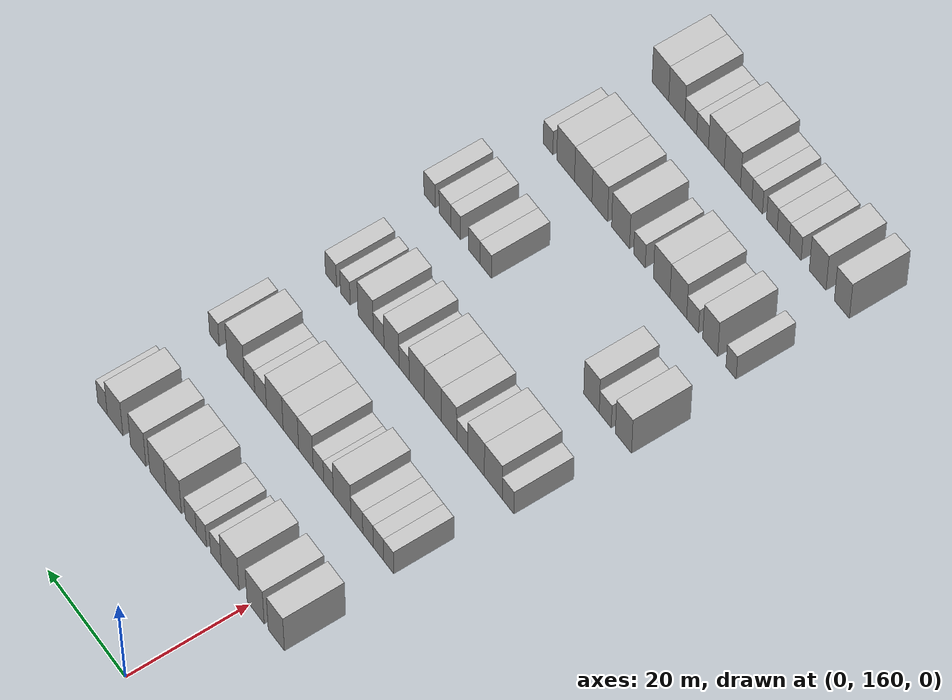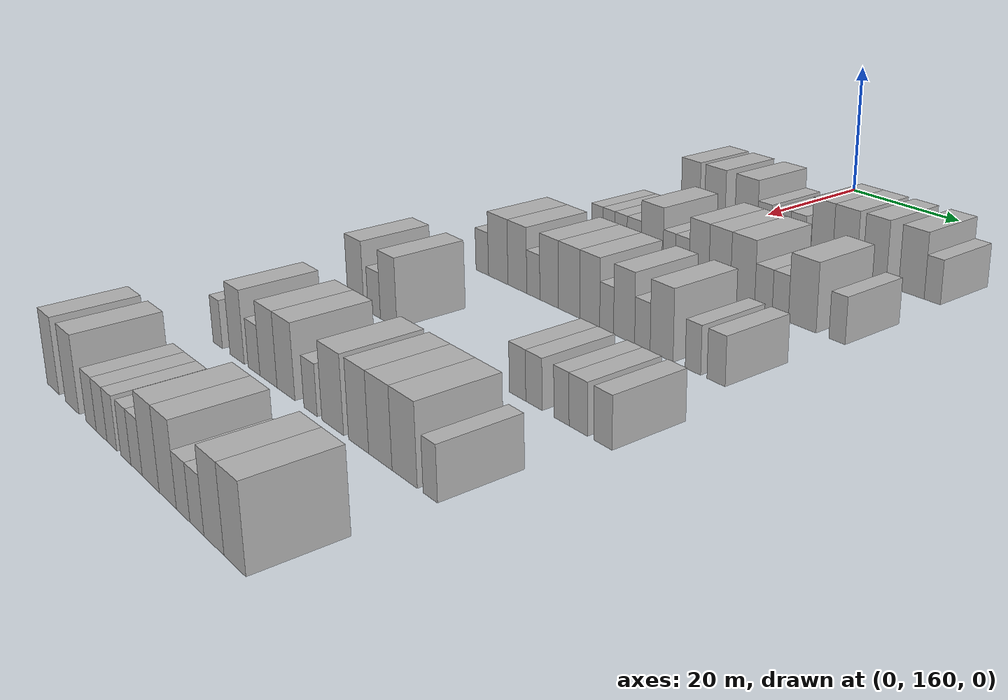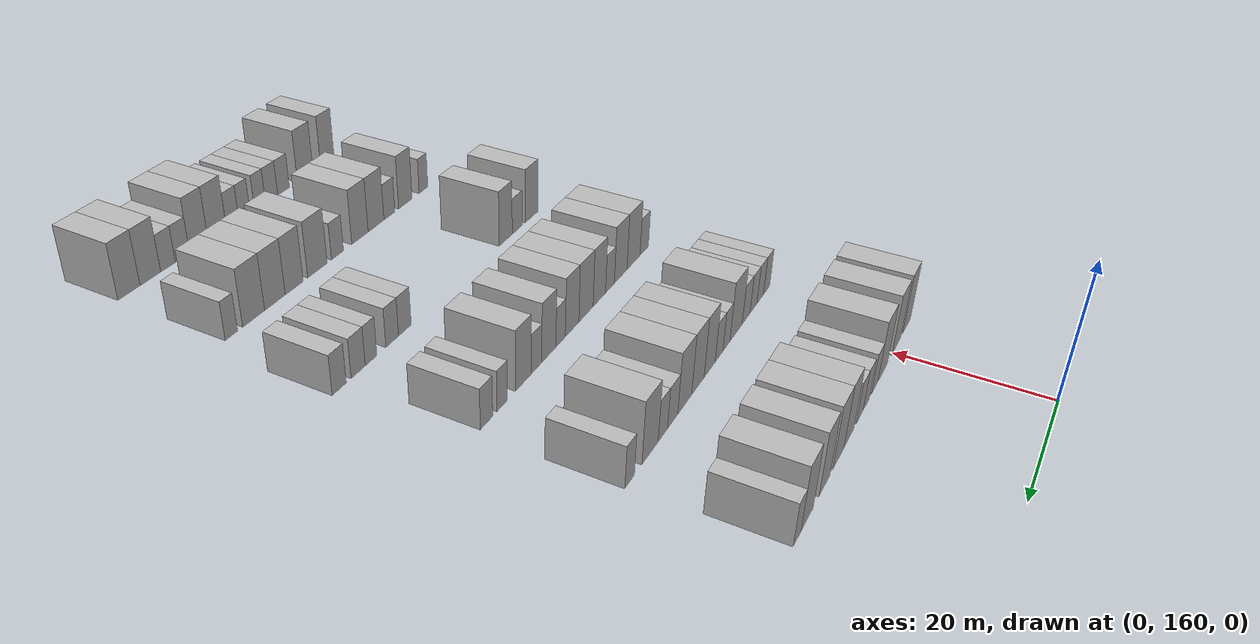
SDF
<sdf version="1.6">
 <world name="default">
  <model name="building_134">
   <static>1</static>
   <pose>25.0000 153.2590 0 0.000000 0.000000 0.000000</pose>
   <link name="link">
    <pose>0 0 4.50 0 0 0</pose>
    <collision name="collision"><geometry><box><size>10.0000 4.0474 9.0000</size></box></geometry></collision>
    <visual name="visual">
     <cast_shadows>0</cast_shadows>
     <geometry><box><size>10.0000 4.0474 9.0000</size></box></geometry>
     <material>
      <script>
       <uri>model://HANNAS_wall/materials/scripts</uri>
       <uri>model://HANNAS_wall/materials/textures</uri>
       <name>vrc/HANNAS_wall</name>
      </script>
     </material>
    </visual>
   </link>
  </model>
  <model name="building_135">
   <static>1</static>
   <pose>25.0000 158.4316 0 0.000000 0.000000 0.000000</pose>
   <link name="link">
    <pose>0 0 4.50 0 0 0</pose>
    <collision name="collision"><geometry><box><size>10.0000 4.2978 9.0000</size></box></geometry></collision>
    <visual name="visual">
     <cast_shadows>0</cast_shadows>
     <geometry><box><size>10.0000 4.2978 9.0000</size></box></geometry>
     <material>
      <script>
       <uri>model://HANNAS_wall/materials/scripts</uri>
       <uri>model://HANNAS_wall/materials/textures</uri>
       <name>vrc/HANNAS_wall</name>
      </script>
     </material>
    </visual>
   </link>
  </model>
  <model name="building_136">
   <static>1</static>
   <pose>25.0000 164.8286 0 0.000000 0.000000 0.000000</pose>
   <link name="link">
    <pose>0 0 4.50 0 0 0</pose>
    <collision name="collision"><geometry><box><size>10.0000 4.4962 9.0000</size></box></geometry></collision>
    <visual name="visual">
     <cast_shadows>0</cast_shadows>
     <geometry><box><size>10.0000 4.4962 9.0000</size></box></geometry>
     <material>
      <script>
       <uri>model://HANNAS_wall/materials/scripts</uri>
       <uri>model://HANNAS_wall/materials/textures</uri>
       <name>vrc/HANNAS_wall</name>
      </script>
     </material>
    </visual>
   </link>
  </model>
  <model name="building_137">
   <static>1</static>
   <pose>25.0000 168.4342 0 0.000000 0.000000 0.000000</pose>
   <link name="link">
    <pose>0 0 3.00 0 0 0</pose>
    <collision name="collision"><geometry><box><size>10.0000 2.7151 6.0000</size></box></geometry></collision>
    <visual name="visual">
     <cast_shadows>0</cast_shadows>
     <geometry><box><size>10.0000 2.7151 6.0000</size></box></geometry>
     <material>
      <script>
       <uri>model://HANNAS_wall/materials/scripts</uri>
       <uri>model://HANNAS_wall/materials/textures</uri>
       <name>vrc/HANNAS_wall</name>
      </script>
     </material>
    </visual>
   </link>
  </model>
  <model name="building_138">
   <static>1</static>
   <pose>25.0000 172.0923 0 0.000000 0.000000 0.000000</pose>
   <link name="link">
    <pose>0 0 3.00 0 0 0</pose>
    <collision name="collision"><geometry><box><size>10.0000 2.6012 6.0000</size></box></geometry></collision>
    <visual name="visual">
     <cast_shadows>0</cast_shadows>
     <geometry><box><size>10.0000 2.6012 6.0000</size></box></geometry>
     <material>
      <script>
       <uri>model://HANNAS_wall/materials/scripts</uri>
       <uri>model://HANNAS_wall/materials/textures</uri>
       <name>vrc/HANNAS_wall</name>
      </script>
     </material>
    </visual>
   </link>
  </model>
  <model name="building_139">
   <static>1</static>
   <pose>25.0000 174.8027 0 0.000000 0.000000 0.000000</pose>
   <link name="link">
    <pose>0 0 3.00 0 0 0</pose>
    <collision name="collision"><geometry><box><size>10.0000 2.8196 6.0000</size></box></geometry></collision>
    <visual name="visual">
     <cast_shadows>0</cast_shadows>
     <geometry><box><size>10.0000 2.8196 6.0000</size></box></geometry>
     <material>
      <script>
       <uri>model://HANNAS_wall/materials/scripts</uri>
       <uri>model://HANNAS_wall/materials/textures</uri>
       <name>vrc/HANNAS_wall</name>
      </script>
     </material>
    </visual>
   </link>
  </model>
  <model name="building_140">
   <static>1</static>
   <pose>25.0000 179.1623 0 0.000000 0.000000 0.000000</pose>
   <link name="link">
    <pose>0 0 4.50 0 0 0</pose>
    <collision name="collision"><geometry><box><size>10.0000 3.8996 9.0000</size></box></geometry></collision>
    <visual name="visual">
     <cast_shadows>0</cast_shadows>
     <geometry><box><size>10.0000 3.8996 9.0000</size></box></geometry>
     <material>
      <script>
       <uri>model://HANNAS_wall/materials/scripts</uri>
       <uri>model://HANNAS_wall/materials/textures</uri>
       <name>vrc/HANNAS_wall</name>
      </script>
     </material>
    </visual>
   </link>
  </model>
  <model name="building_141">
   <static>1</static>
   <pose>25.0000 183.2259 0 0.000000 0.000000 0.000000</pose>
   <link name="link">
    <pose>0 0 4.50 0 0 0</pose>
    <collision name="collision"><geometry><box><size>10.0000 4.2275 9.0000</size></box></geometry></collision>
    <visual name="visual">
     <cast_shadows>0</cast_shadows>
     <geometry><box><size>10.0000 4.2275 9.0000</size></box></geometry>
     <material>
      <script>
       <uri>model://HANNAS_wall/materials/scripts</uri>
       <uri>model://HANNAS_wall/materials/textures</uri>
       <name>vrc/HANNAS_wall</name>
      </script>
     </material>
    </visual>
   </link>
  </model>
  <model name="building_142">
   <static>1</static>
   <pose>25.0000 188.3175 0 0.000000 0.000000 0.000000</pose>
   <link name="link">
    <pose>0 0 4.50 0 0 0</pose>
    <collision name="collision"><geometry><box><size>10.0000 3.9557 9.0000</size></box></geometry></collision>
    <visual name="visual">
     <cast_shadows>0</cast_shadows>
     <geometry><box><size>10.0000 3.9557 9.0000</size></box></geometry>
     <material>
      <script>
       <uri>model://HANNAS_wall/materials/scripts</uri>
       <uri>model://HANNAS_wall/materials/textures</uri>
       <name>vrc/HANNAS_wall</name>
      </script>
     </material>
    </visual>
   </link>
  </model>
  <model name="building_143">
   <static>1</static>
   <pose>25.0000 194.3324 0 0.000000 0.000000 0.000000</pose>
   <link name="link">
    <pose>0 0 4.50 0 0 0</pose>
    <collision name="collision"><geometry><box><size>10.0000 4.0741 9.0000</size></box></geometry></collision>
    <visual name="visual">
     <cast_shadows>0</cast_shadows>
     <geometry><box><size>10.0000 4.0741 9.0000</size></box></geometry>
     <material>
      <script>
       <uri>model://HANNAS_wall/materials/scripts</uri>
       <uri>model://HANNAS_wall/materials/textures</uri>
       <name>vrc/HANNAS_wall</name>
      </script>
     </material>
    </visual>
   </link>
  </model>
  <model name="building_144">
   <static>1</static>
   <pose>25.0000 197.6236 0 0.000000 0.000000 0.000000</pose>
   <link name="link">
    <pose>0 0 3.00 0 0 0</pose>
    <collision name="collision"><geometry><box><size>10.0000 2.5082 6.0000</size></box></geometry></collision>
    <visual name="visual">
     <cast_shadows>0</cast_shadows>
     <geometry><box><size>10.0000 2.5082 6.0000</size></box></geometry>
     <material>
      <script>
       <uri>model://HANNAS_wall/materials/scripts</uri>
       <uri>model://HANNAS_wall/materials/textures</uri>
       <name>vrc/HANNAS_wall</name>
      </script>
     </material>
    </visual>
   </link>
  </model>
  <model name="building_302">
   <static>1</static>
   <pose>44.0000 154.0884 0 0.000000 0.000000 0.000000</pose>
   <link name="link">
    <pose>0 0 3.00 0 0 0</pose>
    <collision name="collision"><geometry><box><size>10.0000 2.4923 6.0000</size></box></geometry></collision>
    <visual name="visual">
     <cast_shadows>0</cast_shadows>
     <geometry><box><size>10.0000 2.4923 6.0000</size></box></geometry>
     <material>
      <script>
       <uri>model://HANNAS_wall/materials/scripts</uri>
       <uri>model://HANNAS_wall/materials/textures</uri>
       <name>vrc/HANNAS_wall</name>
      </script>
     </material>
    </visual>
   </link>
  </model>
  <model name="building_303">
   <static>1</static>
   <pose>44.0000 156.6154 0 0.000000 0.000000 0.000000</pose>
   <link name="link">
    <pose>0 0 3.00 0 0 0</pose>
    <collision name="collision"><geometry><box><size>10.0000 2.5616 6.0000</size></box></geometry></collision>
    <visual name="visual">
     <cast_shadows>0</cast_shadows>
     <geometry><box><size>10.0000 2.5616 6.0000</size></box></geometry>
     <material>
      <script>
       <uri>model://HANNAS_wall/materials/scripts</uri>
       <uri>model://HANNAS_wall/materials/textures</uri>
       <name>vrc/HANNAS_wall</name>
      </script>
     </material>
    </visual>
   </link>
  </model>
  <model name="building_304">
   <static>1</static>
   <pose>44.0000 159.2089 0 0.000000 0.000000 0.000000</pose>
   <link name="link">
    <pose>0 0 3.00 0 0 0</pose>
    <collision name="collision"><geometry><box><size>10.0000 2.6256 6.0000</size></box></geometry></collision>
    <visual name="visual">
     <cast_shadows>0</cast_shadows>
     <geometry><box><size>10.0000 2.6256 6.0000</size></box></geometry>
     <material>
      <script>
       <uri>model://HANNAS_wall/materials/scripts</uri>
       <uri>model://HANNAS_wall/materials/textures</uri>
       <name>vrc/HANNAS_wall</name>
      </script>
     </material>
    </visual>
   </link>
  </model>
  <model name="building_305">
   <static>1</static>
   <pose>44.0000 161.9990 0 0.000000 0.000000 0.000000</pose>
   <link name="link">
    <pose>0 0 3.00 0 0 0</pose>
    <collision name="collision"><geometry><box><size>10.0000 2.9545 6.0000</size></box></geometry></collision>
    <visual name="visual">
     <cast_shadows>0</cast_shadows>
     <geometry><box><size>10.0000 2.9545 6.0000</size></box></geometry>
     <material>
      <script>
       <uri>model://HANNAS_wall/materials/scripts</uri>
       <uri>model://HANNAS_wall/materials/textures</uri>
       <name>vrc/HANNAS_wall</name>
      </script>
     </material>
    </visual>
   </link>
  </model>
  <model name="building_306">
   <static>1</static>
   <pose>44.0000 165.6809 0 0.000000 0.000000 0.000000</pose>
   <link name="link">
    <pose>0 0 4.50 0 0 0</pose>
    <collision name="collision"><geometry><box><size>10.0000 4.4094 9.0000</size></box></geometry></collision>
    <visual name="visual">
     <cast_shadows>0</cast_shadows>
     <geometry><box><size>10.0000 4.4094 9.0000</size></box></geometry>
     <material>
      <script>
       <uri>model://HANNAS_wall/materials/scripts</uri>
       <uri>model://HANNAS_wall/materials/textures</uri>
       <name>vrc/HANNAS_wall</name>
      </script>
     </material>
    </visual>
   </link>
  </model>
  <model name="building_307">
   <static>1</static>
   <pose>44.0000 169.0924 0 0.000000 0.000000 0.000000</pose>
   <link name="link">
    <pose>0 0 3.00 0 0 0</pose>
    <collision name="collision"><geometry><box><size>10.0000 2.4136 6.0000</size></box></geometry></collision>
    <visual name="visual">
     <cast_shadows>0</cast_shadows>
     <geometry><box><size>10.0000 2.4136 6.0000</size></box></geometry>
     <material>
      <script>
       <uri>model://HANNAS_wall/materials/scripts</uri>
       <uri>model://HANNAS_wall/materials/textures</uri>
       <name>vrc/HANNAS_wall</name>
      </script>
     </material>
    </visual>
   </link>
  </model>
  <model name="building_308">
   <static>1</static>
   <pose>44.0000 171.6311 0 0.000000 0.000000 0.000000</pose>
   <link name="link">
    <pose>0 0 3.00 0 0 0</pose>
    <collision name="collision"><geometry><box><size>10.0000 2.6637 6.0000</size></box></geometry></collision>
    <visual name="visual">
     <cast_shadows>0</cast_shadows>
     <geometry><box><size>10.0000 2.6637 6.0000</size></box></geometry>
     <material>
      <script>
       <uri>model://HANNAS_wall/materials/scripts</uri>
       <uri>model://HANNAS_wall/materials/textures</uri>
       <name>vrc/HANNAS_wall</name>
      </script>
     </material>
    </visual>
   </link>
  </model>
  <model name="building_309">
   <static>1</static>
   <pose>44.0000 174.7963 0 0.000000 0.000000 0.000000</pose>
   <link name="link">
    <pose>0 0 4.50 0 0 0</pose>
    <collision name="collision"><geometry><box><size>10.0000 3.6668 9.0000</size></box></geometry></collision>
    <visual name="visual">
     <cast_shadows>0</cast_shadows>
     <geometry><box><size>10.0000 3.6668 9.0000</size></box></geometry>
     <material>
      <script>
       <uri>model://HANNAS_wall/materials/scripts</uri>
       <uri>model://HANNAS_wall/materials/textures</uri>
       <name>vrc/HANNAS_wall</name>
      </script>
     </material>
    </visual>
   </link>
  </model>
  <model name="building_310">
   <static>1</static>
   <pose>44.0000 178.6045 0 0.000000 0.000000 0.000000</pose>
   <link name="link">
    <pose>0 0 4.50 0 0 0</pose>
    <collision name="collision"><geometry><box><size>10.0000 3.9496 9.0000</size></box></geometry></collision>
    <visual name="visual">
     <cast_shadows>0</cast_shadows>
     <geometry><box><size>10.0000 3.9496 9.0000</size></box></geometry>
     <material>
      <script>
       <uri>model://HANNAS_wall/materials/scripts</uri>
       <uri>model://HANNAS_wall/materials/textures</uri>
       <name>vrc/HANNAS_wall</name>
      </script>
     </material>
    </visual>
   </link>
  </model>
  <model name="building_311">
   <static>1</static>
   <pose>44.0000 182.7120 0 0.000000 0.000000 0.000000</pose>
   <link name="link">
    <pose>0 0 4.50 0 0 0</pose>
    <collision name="collision"><geometry><box><size>10.0000 4.2654 9.0000</size></box></geometry></collision>
    <visual name="visual">
     <cast_shadows>0</cast_shadows>
     <geometry><box><size>10.0000 4.2654 9.0000</size></box></geometry>
     <material>
      <script>
       <uri>model://HANNAS_wall/materials/scripts</uri>
       <uri>model://HANNAS_wall/materials/textures</uri>
       <name>vrc/HANNAS_wall</name>
      </script>
     </material>
    </visual>
   </link>
  </model>
  <model name="building_312">
   <static>1</static>
   <pose>44.0000 186.3400 0 0.000000 0.000000 0.000000</pose>
   <link name="link">
    <pose>0 0 3.00 0 0 0</pose>
    <collision name="collision"><geometry><box><size>10.0000 2.9906 6.0000</size></box></geometry></collision>
    <visual name="visual">
     <cast_shadows>0</cast_shadows>
     <geometry><box><size>10.0000 2.9906 6.0000</size></box></geometry>
     <material>
      <script>
       <uri>model://HANNAS_wall/materials/scripts</uri>
       <uri>model://HANNAS_wall/materials/textures</uri>
       <name>vrc/HANNAS_wall</name>
      </script>
     </material>
    </visual>
   </link>
  </model>
  <model name="building_313">
   <static>1</static>
   <pose>44.0000 189.1835 0 0.000000 0.000000 0.000000</pose>
   <link name="link">
    <pose>0 0 3.00 0 0 0</pose>
    <collision name="collision"><geometry><box><size>10.0000 2.6963 6.0000</size></box></geometry></collision>
    <visual name="visual">
     <cast_shadows>0</cast_shadows>
     <geometry><box><size>10.0000 2.6963 6.0000</size></box></geometry>
     <material>
      <script>
       <uri>model://HANNAS_wall/materials/scripts</uri>
       <uri>model://HANNAS_wall/materials/textures</uri>
       <name>vrc/HANNAS_wall</name>
      </script>
     </material>
    </visual>
   </link>
  </model>
  <model name="building_314">
   <static>1</static>
   <pose>44.0000 192.7636 0 0.000000 0.000000 0.000000</pose>
   <link name="link">
    <pose>0 0 4.50 0 0 0</pose>
    <collision name="collision"><geometry><box><size>10.0000 4.4639 9.0000</size></box></geometry></collision>
    <visual name="visual">
     <cast_shadows>0</cast_shadows>
     <geometry><box><size>10.0000 4.4639 9.0000</size></box></geometry>
     <material>
      <script>
       <uri>model://HANNAS_wall/materials/scripts</uri>
       <uri>model://HANNAS_wall/materials/textures</uri>
       <name>vrc/HANNAS_wall</name>
      </script>
     </material>
    </visual>
   </link>
  </model>
  <model name="building_315">
   <static>1</static>
   <pose>44.0000 198.2391 0 0.000000 0.000000 0.000000</pose>
   <link name="link">
    <pose>0 0 3.00 0 0 0</pose>
    <collision name="collision"><geometry><box><size>10.0000 2.4870 6.0000</size></box></geometry></collision>
    <visual name="visual">
     <cast_shadows>0</cast_shadows>
     <geometry><box><size>10.0000 2.4870 6.0000</size></box></geometry>
     <material>
      <script>
       <uri>model://HANNAS_wall/materials/scripts</uri>
       <uri>model://HANNAS_wall/materials/textures</uri>
       <name>vrc/HANNAS_wall</name>
      </script>
     </material>
    </visual>
   </link>
  </model>
  <model name="building_477">
   <static>1</static>
   <pose>63.0000 152.8195 0 0.000000 0.000000 0.000000</pose>
   <link name="link">
    <pose>0 0 3.00 0 0 0</pose>
    <collision name="collision"><geometry><box><size>10.0000 2.9047 6.0000</size></box></geometry></collision>
    <visual name="visual">
     <cast_shadows>0</cast_shadows>
     <geometry><box><size>10.0000 2.9047 6.0000</size></box></geometry>
     <material>
      <script>
       <uri>model://HANNAS_wall/materials/scripts</uri>
       <uri>model://HANNAS_wall/materials/textures</uri>
       <name>vrc/HANNAS_wall</name>
      </script>
     </material>
    </visual>
   </link>
  </model>
  <model name="building_478">
   <static>1</static>
   <pose>63.0000 156.4593 0 0.000000 0.000000 0.000000</pose>
   <link name="link">
    <pose>0 0 4.50 0 0 0</pose>
    <collision name="collision"><geometry><box><size>10.0000 4.3749 9.0000</size></box></geometry></collision>
    <visual name="visual">
     <cast_shadows>0</cast_shadows>
     <geometry><box><size>10.0000 4.3749 9.0000</size></box></geometry>
     <material>
      <script>
       <uri>model://HANNAS_wall/materials/scripts</uri>
       <uri>model://HANNAS_wall/materials/textures</uri>
       <name>vrc/HANNAS_wall</name>
      </script>
     </material>
    </visual>
   </link>
  </model>
  <model name="building_479">
   <static>1</static>
   <pose>63.0000 160.6976 0 0.000000 0.000000 0.000000</pose>
   <link name="link">
    <pose>0 0 4.50 0 0 0</pose>
    <collision name="collision"><geometry><box><size>10.0000 4.1018 9.0000</size></box></geometry></collision>
    <visual name="visual">
     <cast_shadows>0</cast_shadows>
     <geometry><box><size>10.0000 4.1018 9.0000</size></box></geometry>
     <material>
      <script>
       <uri>model://HANNAS_wall/materials/scripts</uri>
       <uri>model://HANNAS_wall/materials/textures</uri>
       <name>vrc/HANNAS_wall</name>
      </script>
     </material>
    </visual>
   </link>
  </model>
  <model name="building_480">
   <static>1</static>
   <pose>63.0000 164.1303 0 0.000000 0.000000 0.000000</pose>
   <link name="link">
    <pose>0 0 3.00 0 0 0</pose>
    <collision name="collision"><geometry><box><size>10.0000 2.7636 6.0000</size></box></geometry></collision>
    <visual name="visual">
     <cast_shadows>0</cast_shadows>
     <geometry><box><size>10.0000 2.7636 6.0000</size></box></geometry>
     <material>
      <script>
       <uri>model://HANNAS_wall/materials/scripts</uri>
       <uri>model://HANNAS_wall/materials/textures</uri>
       <name>vrc/HANNAS_wall</name>
      </script>
     </material>
    </visual>
   </link>
  </model>
  <model name="building_481">
   <static>1</static>
   <pose>63.0000 167.4209 0 0.000000 0.000000 0.000000</pose>
   <link name="link">
    <pose>0 0 4.50 0 0 0</pose>
    <collision name="collision"><geometry><box><size>10.0000 3.8175 9.0000</size></box></geometry></collision>
    <visual name="visual">
     <cast_shadows>0</cast_shadows>
     <geometry><box><size>10.0000 3.8175 9.0000</size></box></geometry>
     <material>
      <script>
       <uri>model://HANNAS_wall/materials/scripts</uri>
       <uri>model://HANNAS_wall/materials/textures</uri>
       <name>vrc/HANNAS_wall</name>
      </script>
     </material>
    </visual>
   </link>
  </model>
  <model name="building_482">
   <static>1</static>
   <pose>63.0000 171.4322 0 0.000000 0.000000 0.000000</pose>
   <link name="link">
    <pose>0 0 4.50 0 0 0</pose>
    <collision name="collision"><geometry><box><size>10.0000 4.2052 9.0000</size></box></geometry></collision>
    <visual name="visual">
     <cast_shadows>0</cast_shadows>
     <geometry><box><size>10.0000 4.2052 9.0000</size></box></geometry>
     <material>
      <script>
       <uri>model://HANNAS_wall/materials/scripts</uri>
       <uri>model://HANNAS_wall/materials/textures</uri>
       <name>vrc/HANNAS_wall</name>
      </script>
     </material>
    </visual>
   </link>
  </model>
  <model name="building_483">
   <static>1</static>
   <pose>63.0000 175.4524 0 0.000000 0.000000 0.000000</pose>
   <link name="link">
    <pose>0 0 4.50 0 0 0</pose>
    <collision name="collision"><geometry><box><size>10.0000 3.8351 9.0000</size></box></geometry></collision>
    <visual name="visual">
     <cast_shadows>0</cast_shadows>
     <geometry><box><size>10.0000 3.8351 9.0000</size></box></geometry>
     <material>
      <script>
       <uri>model://HANNAS_wall/materials/scripts</uri>
       <uri>model://HANNAS_wall/materials/textures</uri>
       <name>vrc/HANNAS_wall</name>
      </script>
     </material>
    </visual>
   </link>
  </model>
  <model name="building_484">
   <static>1</static>
   <pose>63.0000 178.6576 0 0.000000 0.000000 0.000000</pose>
   <link name="link">
    <pose>0 0 3.00 0 0 0</pose>
    <collision name="collision"><geometry><box><size>10.0000 2.5753 6.0000</size></box></geometry></collision>
    <visual name="visual">
     <cast_shadows>0</cast_shadows>
     <geometry><box><size>10.0000 2.5753 6.0000</size></box></geometry>
     <material>
      <script>
       <uri>model://HANNAS_wall/materials/scripts</uri>
       <uri>model://HANNAS_wall/materials/textures</uri>
       <name>vrc/HANNAS_wall</name>
      </script>
     </material>
    </visual>
   </link>
  </model>
  <model name="building_485">
   <static>1</static>
   <pose>63.0000 181.8429 0 0.000000 0.000000 0.000000</pose>
   <link name="link">
    <pose>0 0 4.50 0 0 0</pose>
    <collision name="collision"><geometry><box><size>10.0000 3.7954 9.0000</size></box></geometry></collision>
    <visual name="visual">
     <cast_shadows>0</cast_shadows>
     <geometry><box><size>10.0000 3.7954 9.0000</size></box></geometry>
     <material>
      <script>
       <uri>model://HANNAS_wall/materials/scripts</uri>
       <uri>model://HANNAS_wall/materials/textures</uri>
       <name>vrc/HANNAS_wall</name>
      </script>
     </material>
    </visual>
   </link>
  </model>
  <model name="building_486">
   <static>1</static>
   <pose>63.0000 185.0934 0 0.000000 0.000000 0.000000</pose>
   <link name="link">
    <pose>0 0 3.00 0 0 0</pose>
    <collision name="collision"><geometry><box><size>10.0000 2.7057 6.0000</size></box></geometry></collision>
    <visual name="visual">
     <cast_shadows>0</cast_shadows>
     <geometry><box><size>10.0000 2.7057 6.0000</size></box></geometry>
     <material>
      <script>
       <uri>model://HANNAS_wall/materials/scripts</uri>
       <uri>model://HANNAS_wall/materials/textures</uri>
       <name>vrc/HANNAS_wall</name>
      </script>
     </material>
    </visual>
   </link>
  </model>
  <model name="building_487">
   <static>1</static>
   <pose>63.0000 188.3952 0 0.000000 0.000000 0.000000</pose>
   <link name="link">
    <pose>0 0 4.50 0 0 0</pose>
    <collision name="collision"><geometry><box><size>10.0000 3.8978 9.0000</size></box></geometry></collision>
    <visual name="visual">
     <cast_shadows>0</cast_shadows>
     <geometry><box><size>10.0000 3.8978 9.0000</size></box></geometry>
     <material>
      <script>
       <uri>model://HANNAS_wall/materials/scripts</uri>
       <uri>model://HANNAS_wall/materials/textures</uri>
       <name>vrc/HANNAS_wall</name>
      </script>
     </material>
    </visual>
   </link>
  </model>
  <model name="building_488">
   <static>1</static>
   <pose>63.0000 193.5951 0 0.000000 0.000000 0.000000</pose>
   <link name="link">
    <pose>0 0 3.00 0 0 0</pose>
    <collision name="collision"><geometry><box><size>10.0000 2.5021 6.0000</size></box></geometry></collision>
    <visual name="visual">
     <cast_shadows>0</cast_shadows>
     <geometry><box><size>10.0000 2.5021 6.0000</size></box></geometry>
     <material>
      <script>
       <uri>model://HANNAS_wall/materials/scripts</uri>
       <uri>model://HANNAS_wall/materials/textures</uri>
       <name>vrc/HANNAS_wall</name>
      </script>
     </material>
    </visual>
   </link>
  </model>
  <model name="building_489">
   <static>1</static>
   <pose>63.0000 197.2650 0 0.000000 0.000000 0.000000</pose>
   <link name="link">
    <pose>0 0 3.00 0 0 0</pose>
    <collision name="collision"><geometry><box><size>10.0000 2.8376 6.0000</size></box></geometry></collision>
    <visual name="visual">
     <cast_shadows>0</cast_shadows>
     <geometry><box><size>10.0000 2.8376 6.0000</size></box></geometry>
     <material>
      <script>
       <uri>model://HANNAS_wall/materials/scripts</uri>
       <uri>model://HANNAS_wall/materials/textures</uri>
       <name>vrc/HANNAS_wall</name>
      </script>
     </material>
    </visual>
   </link>
  </model>
  <model name="building_648">
   <static>1</static>
   <pose>82.0000 152.1817 0 0.000000 0.000000 0.000000</pose>
   <link name="link">
    <pose>0 0 4.50 0 0 0</pose>
    <collision name="collision"><geometry><box><size>10.0000 3.9503 9.0000</size></box></geometry></collision>
    <visual name="visual">
     <cast_shadows>0</cast_shadows>
     <geometry><box><size>10.0000 3.9503 9.0000</size></box></geometry>
     <material>
      <script>
       <uri>model://HANNAS_wall/materials/scripts</uri>
       <uri>model://HANNAS_wall/materials/textures</uri>
       <name>vrc/HANNAS_wall</name>
      </script>
     </material>
    </visual>
   </link>
  </model>
  <model name="building_649">
   <static>1</static>
   <pose>82.0000 156.6270 0 0.000000 0.000000 0.000000</pose>
   <link name="link">
    <pose>0 0 3.00 0 0 0</pose>
    <collision name="collision"><geometry><box><size>10.0000 2.9404 6.0000</size></box></geometry></collision>
    <visual name="visual">
     <cast_shadows>0</cast_shadows>
     <geometry><box><size>10.0000 2.9404 6.0000</size></box></geometry>
     <material>
      <script>
       <uri>model://HANNAS_wall/materials/scripts</uri>
       <uri>model://HANNAS_wall/materials/textures</uri>
       <name>vrc/HANNAS_wall</name>
      </script>
     </material>
    </visual>
   </link>
  </model>
  <model name="building_650">
   <static>1</static>
   <pose>82.0000 159.9948 0 0.000000 0.000000 0.000000</pose>
   <link name="link">
    <pose>0 0 4.50 0 0 0</pose>
    <collision name="collision"><geometry><box><size>10.0000 3.7951 9.0000</size></box></geometry></collision>
    <visual name="visual">
     <cast_shadows>0</cast_shadows>
     <geometry><box><size>10.0000 3.7951 9.0000</size></box></geometry>
     <material>
      <script>
       <uri>model://HANNAS_wall/materials/scripts</uri>
       <uri>model://HANNAS_wall/materials/textures</uri>
       <name>vrc/HANNAS_wall</name>
      </script>
     </material>
    </visual>
   </link>
  </model>
  <model name="building_651">
   <static>1</static>
   <pose>82.0000 186.2957 0 0.000000 0.000000 0.000000</pose>
   <link name="link">
    <pose>0 0 3.00 0 0 0</pose>
    <collision name="collision"><geometry><box><size>10.0000 2.9356 6.0000</size></box></geometry></collision>
    <visual name="visual">
     <cast_shadows>0</cast_shadows>
     <geometry><box><size>10.0000 2.9356 6.0000</size></box></geometry>
     <material>
      <script>
       <uri>model://HANNAS_wall/materials/scripts</uri>
       <uri>model://HANNAS_wall/materials/textures</uri>
       <name>vrc/HANNAS_wall</name>
      </script>
     </material>
    </visual>
   </link>
  </model>
  <model name="building_652">
   <static>1</static>
   <pose>82.0000 189.1942 0 0.000000 0.000000 0.000000</pose>
   <link name="link">
    <pose>0 0 3.00 0 0 0</pose>
    <collision name="collision"><geometry><box><size>10.0000 2.8614 6.0000</size></box></geometry></collision>
    <visual name="visual">
     <cast_shadows>0</cast_shadows>
     <geometry><box><size>10.0000 2.8614 6.0000</size></box></geometry>
     <material>
      <script>
       <uri>model://HANNAS_wall/materials/scripts</uri>
       <uri>model://HANNAS_wall/materials/textures</uri>
       <name>vrc/HANNAS_wall</name>
      </script>
     </material>
    </visual>
   </link>
  </model>
  <model name="building_653">
   <static>1</static>
   <pose>82.0000 193.8821 0 0.000000 0.000000 0.000000</pose>
   <link name="link">
    <pose>0 0 3.00 0 0 0</pose>
    <collision name="collision"><geometry><box><size>10.0000 2.5145 6.0000</size></box></geometry></collision>
    <visual name="visual">
     <cast_shadows>0</cast_shadows>
     <geometry><box><size>10.0000 2.5145 6.0000</size></box></geometry>
     <material>
      <script>
       <uri>model://HANNAS_wall/materials/scripts</uri>
       <uri>model://HANNAS_wall/materials/textures</uri>
       <name>vrc/HANNAS_wall</name>
      </script>
     </material>
    </visual>
   </link>
  </model>
  <model name="building_654">
   <static>1</static>
   <pose>82.0000 196.6251 0 0.000000 0.000000 0.000000</pose>
   <link name="link">
    <pose>0 0 3.00 0 0 0</pose>
    <collision name="collision"><geometry><box><size>10.0000 2.9715 6.0000</size></box></geometry></collision>
    <visual name="visual">
     <cast_shadows>0</cast_shadows>
     <geometry><box><size>10.0000 2.9715 6.0000</size></box></geometry>
     <material>
      <script>
       <uri>model://HANNAS_wall/materials/scripts</uri>
       <uri>model://HANNAS_wall/materials/textures</uri>
       <name>vrc/HANNAS_wall</name>
      </script>
     </material>
    </visual>
   </link>
  </model>
  <model name="building_655">
   <static>1</static>
   <pose>82.0000 200.5352 0 0.000000 0.000000 0.000000</pose>
   <link name="link">
    <pose>0 0 3.00 0 0 0</pose>
    <collision name="collision"><geometry><box><size>10.0000 2.8488 6.0000</size></box></geometry></collision>
    <visual name="visual">
     <cast_shadows>0</cast_shadows>
     <geometry><box><size>10.0000 2.8488 6.0000</size></box></geometry>
     <material>
      <script>
       <uri>model://HANNAS_wall/materials/scripts</uri>
       <uri>model://HANNAS_wall/materials/textures</uri>
       <name>vrc/HANNAS_wall</name>
      </script>
     </material>
    </visual>
   </link>
  </model>
  <model name="building_827">
   <static>1</static>
   <pose>101.0000 153.0746 0 0.000000 0.000000 0.000000</pose>
   <link name="link">
    <pose>0 0 3.00 0 0 0</pose>
    <collision name="collision"><geometry><box><size>10.0000 2.4584 6.0000</size></box></geometry></collision>
    <visual name="visual">
     <cast_shadows>0</cast_shadows>
     <geometry><box><size>10.0000 2.4584 6.0000</size></box></geometry>
     <material>
      <script>
       <uri>model://HANNAS_wall/materials/scripts</uri>
       <uri>model://HANNAS_wall/materials/textures</uri>
       <name>vrc/HANNAS_wall</name>
      </script>
     </material>
    </visual>
   </link>
  </model>
  <model name="building_828">
   <static>1</static>
   <pose>101.0000 158.1394 0 0.000000 0.000000 0.000000</pose>
   <link name="link">
    <pose>0 0 4.50 0 0 0</pose>
    <collision name="collision"><geometry><box><size>10.0000 3.6711 9.0000</size></box></geometry></collision>
    <visual name="visual">
     <cast_shadows>0</cast_shadows>
     <geometry><box><size>10.0000 3.6711 9.0000</size></box></geometry>
     <material>
      <script>
       <uri>model://HANNAS_wall/materials/scripts</uri>
       <uri>model://HANNAS_wall/materials/textures</uri>
       <name>vrc/HANNAS_wall</name>
      </script>
     </material>
    </visual>
   </link>
  </model>
  <model name="building_829">
   <static>1</static>
   <pose>101.0000 162.4241 0 0.000000 0.000000 0.000000</pose>
   <link name="link">
    <pose>0 0 3.00 0 0 0</pose>
    <collision name="collision"><geometry><box><size>10.0000 2.8984 6.0000</size></box></geometry></collision>
    <visual name="visual">
     <cast_shadows>0</cast_shadows>
     <geometry><box><size>10.0000 2.8984 6.0000</size></box></geometry>
     <material>
      <script>
       <uri>model://HANNAS_wall/materials/scripts</uri>
       <uri>model://HANNAS_wall/materials/textures</uri>
       <name>vrc/HANNAS_wall</name>
      </script>
     </material>
    </visual>
   </link>
  </model>
  <model name="building_830">
   <static>1</static>
   <pose>101.0000 165.9126 0 0.000000 0.000000 0.000000</pose>
   <link name="link">
    <pose>0 0 4.50 0 0 0</pose>
    <collision name="collision"><geometry><box><size>10.0000 4.0786 9.0000</size></box></geometry></collision>
    <visual name="visual">
     <cast_shadows>0</cast_shadows>
     <geometry><box><size>10.0000 4.0786 9.0000</size></box></geometry>
     <material>
      <script>
       <uri>model://HANNAS_wall/materials/scripts</uri>
       <uri>model://HANNAS_wall/materials/textures</uri>
       <name>vrc/HANNAS_wall</name>
      </script>
     </material>
    </visual>
   </link>
  </model>
  <model name="building_831">
   <static>1</static>
   <pose>101.0000 169.9988 0 0.000000 0.000000 0.000000</pose>
   <link name="link">
    <pose>0 0 4.50 0 0 0</pose>
    <collision name="collision"><geometry><box><size>10.0000 4.0938 9.0000</size></box></geometry></collision>
    <visual name="visual">
     <cast_shadows>0</cast_shadows>
     <geometry><box><size>10.0000 4.0938 9.0000</size></box></geometry>
     <material>
      <script>
       <uri>model://HANNAS_wall/materials/scripts</uri>
       <uri>model://HANNAS_wall/materials/textures</uri>
       <name>vrc/HANNAS_wall</name>
      </script>
     </material>
    </visual>
   </link>
  </model>
  <model name="building_832">
   <static>1</static>
   <pose>101.0000 175.4810 0 0.000000 0.000000 0.000000</pose>
   <link name="link">
    <pose>0 0 3.00 0 0 0</pose>
    <collision name="collision"><geometry><box><size>10.0000 2.8707 6.0000</size></box></geometry></collision>
    <visual name="visual">
     <cast_shadows>0</cast_shadows>
     <geometry><box><size>10.0000 2.8707 6.0000</size></box></geometry>
     <material>
      <script>
       <uri>model://HANNAS_wall/materials/scripts</uri>
       <uri>model://HANNAS_wall/materials/textures</uri>
       <name>vrc/HANNAS_wall</name>
      </script>
     </material>
    </visual>
   </link>
  </model>
  <model name="building_833">
   <static>1</static>
   <pose>101.0000 180.1512 0 0.000000 0.000000 0.000000</pose>
   <link name="link">
    <pose>0 0 4.50 0 0 0</pose>
    <collision name="collision"><geometry><box><size>10.0000 4.4696 9.0000</size></box></geometry></collision>
    <visual name="visual">
     <cast_shadows>0</cast_shadows>
     <geometry><box><size>10.0000 4.4696 9.0000</size></box></geometry>
     <material>
      <script>
       <uri>model://HANNAS_wall/materials/scripts</uri>
       <uri>model://HANNAS_wall/materials/textures</uri>
       <name>vrc/HANNAS_wall</name>
      </script>
     </material>
    </visual>
   </link>
  </model>
  <model name="building_834">
   <static>1</static>
   <pose>101.0000 185.3496 0 0.000000 0.000000 0.000000</pose>
   <link name="link">
    <pose>0 0 4.50 0 0 0</pose>
    <collision name="collision"><geometry><box><size>10.0000 3.9270 9.0000</size></box></geometry></collision>
    <visual name="visual">
     <cast_shadows>0</cast_shadows>
     <geometry><box><size>10.0000 3.9270 9.0000</size></box></geometry>
     <material>
      <script>
       <uri>model://HANNAS_wall/materials/scripts</uri>
       <uri>model://HANNAS_wall/materials/textures</uri>
       <name>vrc/HANNAS_wall</name>
      </script>
     </material>
    </visual>
   </link>
  </model>
  <model name="building_835">
   <static>1</static>
   <pose>101.0000 189.4825 0 0.000000 0.000000 0.000000</pose>
   <link name="link">
    <pose>0 0 4.50 0 0 0</pose>
    <collision name="collision"><geometry><box><size>10.0000 4.3389 9.0000</size></box></geometry></collision>
    <visual name="visual">
     <cast_shadows>0</cast_shadows>
     <geometry><box><size>10.0000 4.3389 9.0000</size></box></geometry>
     <material>
      <script>
       <uri>model://HANNAS_wall/materials/scripts</uri>
       <uri>model://HANNAS_wall/materials/textures</uri>
       <name>vrc/HANNAS_wall</name>
      </script>
     </material>
    </visual>
   </link>
  </model>
  <model name="building_836">
   <static>1</static>
   <pose>101.0000 193.8809 0 0.000000 0.000000 0.000000</pose>
   <link name="link">
    <pose>0 0 4.50 0 0 0</pose>
    <collision name="collision"><geometry><box><size>10.0000 4.4578 9.0000</size></box></geometry></collision>
    <visual name="visual">
     <cast_shadows>0</cast_shadows>
     <geometry><box><size>10.0000 4.4578 9.0000</size></box></geometry>
     <material>
      <script>
       <uri>model://HANNAS_wall/materials/scripts</uri>
       <uri>model://HANNAS_wall/materials/textures</uri>
       <name>vrc/HANNAS_wall</name>
      </script>
     </material>
    </visual>
   </link>
  </model>
  <model name="building_837">
   <static>1</static>
   <pose>101.0000 198.3199 0 0.000000 0.000000 0.000000</pose>
   <link name="link">
    <pose>0 0 3.00 0 0 0</pose>
    <collision name="collision"><geometry><box><size>10.0000 2.4201 6.0000</size></box></geometry></collision>
    <visual name="visual">
     <cast_shadows>0</cast_shadows>
     <geometry><box><size>10.0000 2.4201 6.0000</size></box></geometry>
     <material>
      <script>
       <uri>model://HANNAS_wall/materials/scripts</uri>
       <uri>model://HANNAS_wall/materials/textures</uri>
       <name>vrc/HANNAS_wall</name>
      </script>
     </material>
    </visual>
   </link>
  </model>
  <model name="building_1007">
   <static>1</static>
   <pose>120.0000 152.8160 0 0.000000 0.000000 0.000000</pose>
   <link name="link">
    <pose>0 0 4.50 0 0 0</pose>
    <collision name="collision"><geometry><box><size>10.0000 3.6344 9.0000</size></box></geometry></collision>
    <visual name="visual">
     <cast_shadows>0</cast_shadows>
     <geometry><box><size>10.0000 3.6344 9.0000</size></box></geometry>
     <material>
      <script>
       <uri>model://HANNAS_wall/materials/scripts</uri>
       <uri>model://HANNAS_wall/materials/textures</uri>
       <name>vrc/HANNAS_wall</name>
      </script>
     </material>
    </visual>
   </link>
  </model>
  <model name="building_1008">
   <static>1</static>
   <pose>120.0000 158.6515 0 0.000000 0.000000 0.000000</pose>
   <link name="link">
    <pose>0 0 4.50 0 0 0</pose>
    <collision name="collision"><geometry><box><size>10.0000 4.0366 9.0000</size></box></geometry></collision>
    <visual name="visual">
     <cast_shadows>0</cast_shadows>
     <geometry><box><size>10.0000 4.0366 9.0000</size></box></geometry>
     <material>
      <script>
       <uri>model://HANNAS_wall/materials/scripts</uri>
       <uri>model://HANNAS_wall/materials/textures</uri>
       <name>vrc/HANNAS_wall</name>
      </script>
     </material>
    </visual>
   </link>
  </model>
  <model name="building_1009">
   <static>1</static>
   <pose>120.0000 164.1214 0 0.000000 0.000000 0.000000</pose>
   <link name="link">
    <pose>0 0 3.00 0 0 0</pose>
    <collision name="collision"><geometry><box><size>10.0000 2.9032 6.0000</size></box></geometry></collision>
    <visual name="visual">
     <cast_shadows>0</cast_shadows>
     <geometry><box><size>10.0000 2.9032 6.0000</size></box></geometry>
     <material>
      <script>
       <uri>model://HANNAS_wall/materials/scripts</uri>
       <uri>model://HANNAS_wall/materials/textures</uri>
       <name>vrc/HANNAS_wall</name>
      </script>
     </material>
    </visual>
   </link>
  </model>
  <model name="building_1010">
   <static>1</static>
   <pose>120.0000 167.0415 0 0.000000 0.000000 0.000000</pose>
   <link name="link">
    <pose>0 0 3.00 0 0 0</pose>
    <collision name="collision"><geometry><box><size>10.0000 2.9370 6.0000</size></box></geometry></collision>
    <visual name="visual">
     <cast_shadows>0</cast_shadows>
     <geometry><box><size>10.0000 2.9370 6.0000</size></box></geometry>
     <material>
      <script>
       <uri>model://HANNAS_wall/materials/scripts</uri>
       <uri>model://HANNAS_wall/materials/textures</uri>
       <name>vrc/HANNAS_wall</name>
      </script>
     </material>
    </visual>
   </link>
  </model>
  <model name="building_1011">
   <static>1</static>
   <pose>120.0000 169.8011 0 0.000000 0.000000 0.000000</pose>
   <link name="link">
    <pose>0 0 3.00 0 0 0</pose>
    <collision name="collision"><geometry><box><size>10.0000 2.5824 6.0000</size></box></geometry></collision>
    <visual name="visual">
     <cast_shadows>0</cast_shadows>
     <geometry><box><size>10.0000 2.5824 6.0000</size></box></geometry>
     <material>
      <script>
       <uri>model://HANNAS_wall/materials/scripts</uri>
       <uri>model://HANNAS_wall/materials/textures</uri>
       <name>vrc/HANNAS_wall</name>
      </script>
     </material>
    </visual>
   </link>
  </model>
  <model name="building_1012">
   <static>1</static>
   <pose>120.0000 173.3880 0 0.000000 0.000000 0.000000</pose>
   <link name="link">
    <pose>0 0 3.00 0 0 0</pose>
    <collision name="collision"><geometry><box><size>10.0000 2.5914 6.0000</size></box></geometry></collision>
    <visual name="visual">
     <cast_shadows>0</cast_shadows>
     <geometry><box><size>10.0000 2.5914 6.0000</size></box></geometry>
     <material>
      <script>
       <uri>model://HANNAS_wall/materials/scripts</uri>
       <uri>model://HANNAS_wall/materials/textures</uri>
       <name>vrc/HANNAS_wall</name>
      </script>
     </material>
    </visual>
   </link>
  </model>
  <model name="building_1013">
   <static>1</static>
   <pose>120.0000 176.0851 0 0.000000 0.000000 0.000000</pose>
   <link name="link">
    <pose>0 0 3.00 0 0 0</pose>
    <collision name="collision"><geometry><box><size>10.0000 2.8028 6.0000</size></box></geometry></collision>
    <visual name="visual">
     <cast_shadows>0</cast_shadows>
     <geometry><box><size>10.0000 2.8028 6.0000</size></box></geometry>
     <material>
      <script>
       <uri>model://HANNAS_wall/materials/scripts</uri>
       <uri>model://HANNAS_wall/materials/textures</uri>
       <name>vrc/HANNAS_wall</name>
      </script>
     </material>
    </visual>
   </link>
  </model>
  <model name="building_1014">
   <static>1</static>
   <pose>120.0000 179.4934 0 0.000000 0.000000 0.000000</pose>
   <link name="link">
    <pose>0 0 4.50 0 0 0</pose>
    <collision name="collision"><geometry><box><size>10.0000 4.0138 9.0000</size></box></geometry></collision>
    <visual name="visual">
     <cast_shadows>0</cast_shadows>
     <geometry><box><size>10.0000 4.0138 9.0000</size></box></geometry>
     <material>
      <script>
       <uri>model://HANNAS_wall/materials/scripts</uri>
       <uri>model://HANNAS_wall/materials/textures</uri>
       <name>vrc/HANNAS_wall</name>
      </script>
     </material>
    </visual>
   </link>
  </model>
  <model name="building_1015">
   <static>1</static>
   <pose>120.0000 183.4517 0 0.000000 0.000000 0.000000</pose>
   <link name="link">
    <pose>0 0 4.50 0 0 0</pose>
    <collision name="collision"><geometry><box><size>10.0000 3.9027 9.0000</size></box></geometry></collision>
    <visual name="visual">
     <cast_shadows>0</cast_shadows>
     <geometry><box><size>10.0000 3.9027 9.0000</size></box></geometry>
     <material>
      <script>
       <uri>model://HANNAS_wall/materials/scripts</uri>
       <uri>model://HANNAS_wall/materials/textures</uri>
       <name>vrc/HANNAS_wall</name>
      </script>
     </material>
    </visual>
   </link>
  </model>
  <model name="building_1016">
   <static>1</static>
   <pose>120.0000 186.8706 0 0.000000 0.000000 0.000000</pose>
   <link name="link">
    <pose>0 0 3.00 0 0 0</pose>
    <collision name="collision"><geometry><box><size>10.0000 2.9351 6.0000</size></box></geometry></collision>
    <visual name="visual">
     <cast_shadows>0</cast_shadows>
     <geometry><box><size>10.0000 2.9351 6.0000</size></box></geometry>
     <material>
      <script>
       <uri>model://HANNAS_wall/materials/scripts</uri>
       <uri>model://HANNAS_wall/materials/textures</uri>
       <name>vrc/HANNAS_wall</name>
      </script>
     </material>
    </visual>
   </link>
  </model>
  <model name="building_1017">
   <static>1</static>
   <pose>120.0000 189.8098 0 0.000000 0.000000 0.000000</pose>
   <link name="link">
    <pose>0 0 3.00 0 0 0</pose>
    <collision name="collision"><geometry><box><size>10.0000 2.9432 6.0000</size></box></geometry></collision>
    <visual name="visual">
     <cast_shadows>0</cast_shadows>
     <geometry><box><size>10.0000 2.9432 6.0000</size></box></geometry>
     <material>
      <script>
       <uri>model://HANNAS_wall/materials/scripts</uri>
       <uri>model://HANNAS_wall/materials/textures</uri>
       <name>vrc/HANNAS_wall</name>
      </script>
     </material>
    </visual>
   </link>
  </model>
  <model name="building_1018">
   <static>1</static>
   <pose>120.0000 193.2952 0 0.000000 0.000000 0.000000</pose>
   <link name="link">
    <pose>0 0 4.50 0 0 0</pose>
    <collision name="collision"><geometry><box><size>10.0000 4.0275 9.0000</size></box></geometry></collision>
    <visual name="visual">
     <cast_shadows>0</cast_shadows>
     <geometry><box><size>10.0000 4.0275 9.0000</size></box></geometry>
     <material>
      <script>
       <uri>model://HANNAS_wall/materials/scripts</uri>
       <uri>model://HANNAS_wall/materials/textures</uri>
       <name>vrc/HANNAS_wall</name>
      </script>
     </material>
    </visual>
   </link>
  </model>
  <model name="building_1019">
   <static>1</static>
   <pose>120.0000 197.3886 0 0.000000 0.000000 0.000000</pose>
   <link name="link">
    <pose>0 0 4.50 0 0 0</pose>
    <collision name="collision"><geometry><box><size>10.0000 4.1594 9.0000</size></box></geometry></collision>
    <visual name="visual">
     <cast_shadows>0</cast_shadows>
     <geometry><box><size>10.0000 4.1594 9.0000</size></box></geometry>
     <material>
      <script>
       <uri>model://HANNAS_wall/materials/scripts</uri>
       <uri>model://HANNAS_wall/materials/textures</uri>
       <name>vrc/HANNAS_wall</name>
      </script>
     </material>
    </visual>
   </link>
  </model>
 </world>
</sdf>
